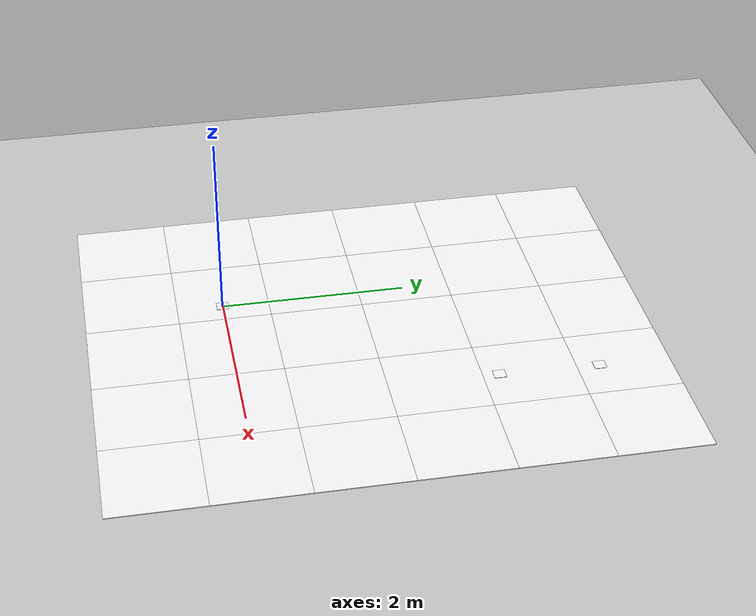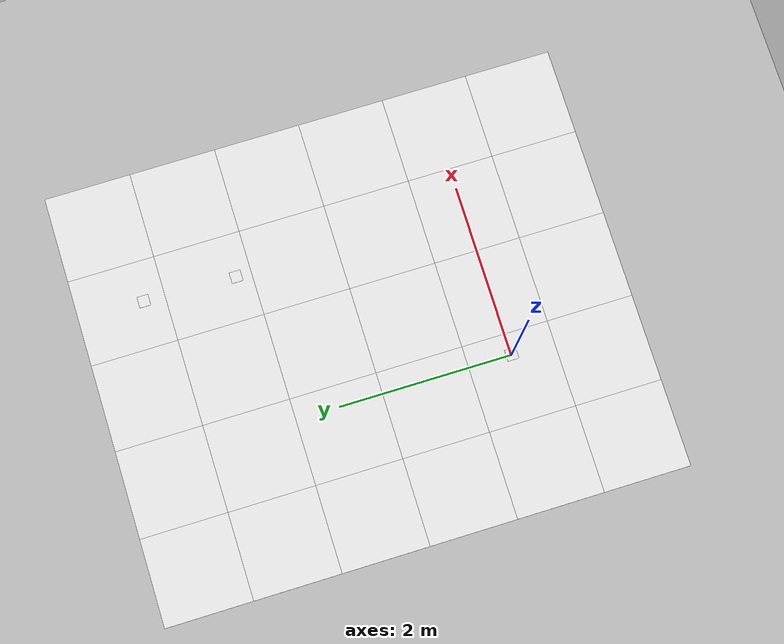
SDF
<sdf version="1.10">
 <world name="default">
  <physics type="ode">
   <max_step_size>0.0040000000000000001</max_step_size>
   <real_time_factor>1</real_time_factor>
   <real_time_update_rate>250</real_time_update_rate>
  </physics>
  <plugin name="gz::sim::systems::Physics" filename="gz-sim-physics-system"/>
  <plugin name="gz::sim::systems::UserCommands" filename="gz-sim-user-commands-system"/>
  <plugin name="gz::sim::systems::SceneBroadcaster" filename="gz-sim-scene-broadcaster-system"/>
  <plugin name="gz::sim::systems::Contact" filename="gz-sim-contact-system"/>
  <plugin name="gz::sim::systems::Imu" filename="gz-sim-imu-system"/>
  <plugin name="gz::sim::systems::AirPressure" filename="gz-sim-air-pressure-system"/>
  <plugin name="gz::sim::systems::ApplyLinkWrench" filename="gz-sim-apply-link-wrench-system"/>
  <plugin name="gz::sim::systems::NavSat" filename="gz-sim-navsat-system"/>
  <plugin name="gz::sim::systems::Sensors" filename="gz-sim-sensors-system">
   <render_engine>ogre2</render_engine>
  </plugin>
  <gravity>0 0 -9.8000000000000007</gravity>
  <magnetic_field>6.0000000000000002e-06 2.3e-05 -4.1999999999999998e-05</magnetic_field>
  <atmosphere type="adiabatic"/>
  <scene>
   <grid>false</grid>
   <ambient>0.800000012 0.800000012 0.800000012 1</ambient>
   <background>0.699999988 0.699999988 0.699999988 1</background>
   <shadows>true</shadows>
  </scene>
  <spherical_coordinates>
   <surface_model>EARTH_WGS84</surface_model>
   <world_frame_orientation>ENU</world_frame_orientation>
   <latitude_deg>47.397971057728974</latitude_deg>
   <longitude_deg>8.5461637398001464</longitude_deg>
   <elevation>0</elevation>
   <heading_deg>0</heading_deg>
  </spherical_coordinates>
  <model name="ground_plane">
   <static>true</static>
   <link name="link">
    <collision name="collision">
     <geometry><plane><normal>0 0 1</normal><size>1 1</size></plane></geometry>
    </collision>
    <visual name="visual">
     <geometry><plane><normal>0 0 1</normal><size>100 100</size></plane></geometry>
     <material>
      <ambient>0.800000012 0.800000012 0.800000012 1</ambient>
      <diffuse>0.800000012 0.800000012 0.800000012 1</diffuse>
      <specular>0.800000012 0.800000012 0.800000012 1</specular>
     </material>
    </visual>
    <inertial>
     <mass>1</mass>
     <inertia><ixx>1</ixx><ixy>0</ixy><ixz>0</ixz><iyy>1</iyy><iyz>0</iyz><izz>1</izz></inertia>
    </inertial>
   </link>
  </model>
  <include>
   <uri>model://blue_line_straight</uri>
   <name>blue_line_straight</name>
   <pose>0.75 0 0 0 0 0</pose>
  </include>
  <include><uri>model://blue_line_left</uri><name>blue_line_left</name><pose>1.75 0 0 0 0 0</pose></include>
  <include>
   <uri>model://blue_line_straight</uri>
   <name>blue_line_straight_0</name>
   <pose>1.75 1 0 0 0 1.57079632679</pose>
  </include>
  <include>
   <uri>model://blue_line_straight</uri>
   <name>blue_line_straight_1</name>
   <pose>1.75 2 0 0 0 1.57079632679</pose>
  </include>
  <include><uri>model://grass</uri><name>grass</name><pose>0.75 1 0 0 0 0</pose></include>
  <include><uri>model://grass</uri><name>grass_0</name><pose>0.75 2 0 0 0 0</pose></include>
  <include><uri>model://grass</uri><name>grass_1</name><pose>-0.25 2 0 0 0 0</pose></include>
  <include><uri>model://grass</uri><name>grass_2</name><pose>-0.25 1 0 0 0 0</pose></include>
  <include><uri>model://grass</uri><name>grass_3</name><pose>-0.25 0 0 0 0 0</pose></include>
  <include><uri>model://grass</uri><name>grass_4</name><pose>-1.25 0 0 0 0 0</pose></include>
  <include><uri>model://grass</uri><name>grass_5</name><pose>-1.25 1 0 0 0 0</pose></include>
  <include><uri>model://grass</uri><name>grass_6</name><pose>-1.25 2 0 0 0 0</pose></include>
  <include><uri>model://grass</uri><name>grass_7</name><pose>-1.25 3 0 0 0 0</pose></include>
  <include><uri>model://grass</uri><name>grass_8</name><pose>-1.25 -1 0 0 0 0</pose></include>
  <include><uri>model://grass</uri><name>grass_9</name><pose>-0.25 -1 0 0 0 0</pose></include>
  <include><uri>model://grass</uri><name>grass_10</name><pose>0.75 -1 0 0 0 0</pose></include>
  <include><uri>model://grass</uri><name>grass_11</name><pose>1.75 -1 0 0 0 0</pose></include>
  <include><uri>model://grass</uri><name>grass_12</name><pose>2.75 -1 0 0 0 0</pose></include>
  <include><uri>model://grass</uri><name>grass_13</name><pose>2.75 0 0 0 0 0</pose></include>
  <include><uri>model://grass</uri><name>grass_14</name><pose>2.75 1 0 0 0 0</pose></include>
  <include><uri>model://grass</uri><name>grass_15</name><pose>2.75 2 0 0 0 0</pose></include>
  <include><uri>model://grass</uri><name>grass_16</name><pose>2.75 3 0 0 0 0</pose></include>
  <include><uri>model://grass</uri><name>grass_17</name><pose>1.75 3 0 0 0 0</pose></include>
  <include><uri>model://grass</uri><name>grass_18</name><pose>0.75 3 0 0 0 0</pose></include>
  <include><uri>model://grass</uri><name>grass_19</name><pose>-0.25 3 0 0 0 0</pose></include>
  <include><uri>model://grass</uri><name>grass_20</name><pose>-1.25 4 0 0 0 0</pose></include>
  <include><uri>model://grass</uri><name>grass_21</name><pose>-0.25 4 0 0 0 0</pose></include>
  <include><uri>model://grass</uri><name>grass_22</name><pose>0.75 4 0 0 0 0</pose></include>
  <include><uri>model://grass</uri><name>grass_23</name><pose>1.75 4 0 0 0 0</pose></include>
  <include><uri>model://grass</uri><name>grass_24</name><pose>2.75 4 0 0 0 0</pose></include>
  <include>
   <uri>model:///aruco_302</uri>
   <name>aruco_302</name>
   <pose>0.005657839995407421 -0.004092633450890143 0 0 0 0</pose>
  </include>
  <include>
   <uri>model:///aruco_303</uri>
   <name>aruco_303</name>
   <pose>1.7547139707140424 2.6778575805929372 0 0 0 0</pose>
  </include>
  <include>
   <uri>model://aruco_302</uri>
   <name>aruco_302_0</name>
   <pose>1.7883812712288434 3.7429401894135044 0 0 0 0</pose>
  </include>
  <light name="sunUTC" type="directional">
   <pose>0 0 500 0 0 0</pose>
   <intensity>1</intensity>
   <direction>0.001 0.625 -0.78000000000000003</direction>
   <diffuse>0.903999984 0.903999984 0.903999984 1</diffuse>
   <specular>0.270999998 0.270999998 0.270999998 1</specular>
   <attenuation><range>2000</range><linear>0</linear><constant>1</constant><quadratic>0</quadratic></attenuation>
   <spot><inner_angle>0</inner_angle><outer_angle>0</outer_angle><falloff>0</falloff></spot>
  </light>
 </world>
</sdf>

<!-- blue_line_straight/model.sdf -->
<sdf version="1.10">
  <model name="blue_line_straight">
    <static>true</static>
    <link name="blue_line_straight_link">
      <visual name="visual">
      <pose>0 0 0 0 0 0</pose>
      <geometry>
        <box>
          <size>1.0 1.0 0.01</size>
        </box>
      </geometry>
      <material>
        <ambient>1.0 1.0 1.0</ambient>
        <diffuse>1.0 1.0 1.0</diffuse>
        <specular>1.0 1.0 1.0</specular>
        <pbr>
          <metal>
            <albedo_map>model://blue_line_straight/materials/blue_line_straight.png</albedo_map>
          </metal>
        </pbr>
      </material>
    </visual>
    </link>
  </model>
</sdf>

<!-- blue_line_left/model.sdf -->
<sdf version="1.10">
  <model name="blue_line_left">
    <static>true</static>
    <link name="blue_line_left_link">
      <visual name="visual">
      <pose>0 0 0 0 0 0</pose>
      <geometry>
        <box>
          <size>1.0 1.0 0.01</size>
        </box>
      </geometry>
      <material>
        <ambient>1.0 1.0 1.0</ambient>
        <diffuse>1.0 1.0 1.0</diffuse>
        <specular>1.0 1.0 1.0</specular>
        <pbr>
          <metal>
            <albedo_map>model://blue_line_left/materials/blue_line_left.png</albedo_map>
          </metal>
        </pbr>
      </material>
    </visual>
    </link>
  </model>
</sdf>

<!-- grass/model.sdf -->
<sdf version="1.10">
  <model name="grass">
    <static>true</static>
    <link name="grass_link">
      <visual name="visual">
      <pose>0 0 0 0 0 0</pose>
      <geometry>
        <box>
          <size>1.0 1.0 0.01</size>
        </box>
      </geometry>
      <material>
        <ambient>1.0 1.0 1.0</ambient>
        <diffuse>1.0 1.0 1.0</diffuse>
        <specular>1.0 1.0 1.0</specular>
        <pbr>
          <metal>
            <albedo_map>model://grass/materials/grass.png</albedo_map>
          </metal>
        </pbr>
      </material>
    </visual>
    </link>
  </model>
</sdf>

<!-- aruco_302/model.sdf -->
<sdf version="1.10">
  <model name="aruco_302">
    <static>true</static>
    <link name="aruco_302_link">
      <visual name="visual">
      <pose>0 0 0 0 0 0</pose>
      <geometry>
        <box>
          <size>0.1285714286 0.1285714286 0.02</size>
        </box>
      </geometry>
      <material>
        <ambient>1.0 1.0 1.0</ambient>
        <diffuse>1.0 1.0 1.0</diffuse>
        <specular>1.0 1.0 1.0</specular>
        <pbr>
          <metal>
            <albedo_map>model://aruco_302/materials/aruco_302.png</albedo_map>
          </metal>
        </pbr>
      </material>
    </visual>
    </link>
  </model>
</sdf>

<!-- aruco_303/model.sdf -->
<sdf version="1.10">
  <model name="aruco_303">
    <static>true</static>
    <link name="aruco_303_link">
      <visual name="visual">
      <pose>0 0 0 0 0 0</pose>
      <geometry>
        <box>
          <size>0.1285714286 0.1285714286 0.02</size>
        </box>
      </geometry>
      <material>
        <ambient>1.0 1.0 1.0</ambient>
        <diffuse>1.0 1.0 1.0</diffuse>
        <specular>1.0 1.0 1.0</specular>
        <pbr>
          <metal>
            <albedo_map>model://aruco_303/materials/aruco_303.png</albedo_map>
          </metal>
        </pbr>
      </material>
    </visual>
    </link>
  </model>
</sdf>
